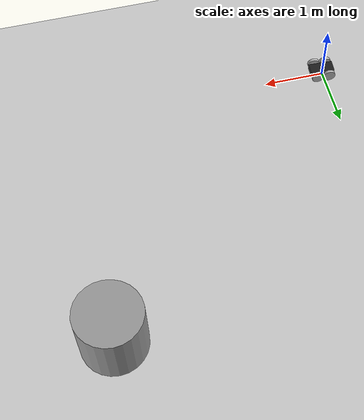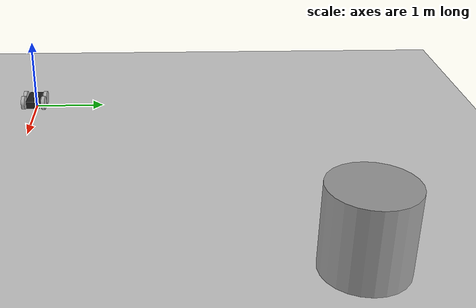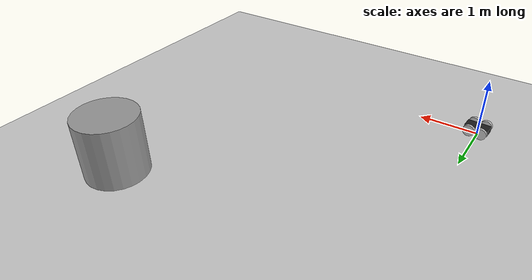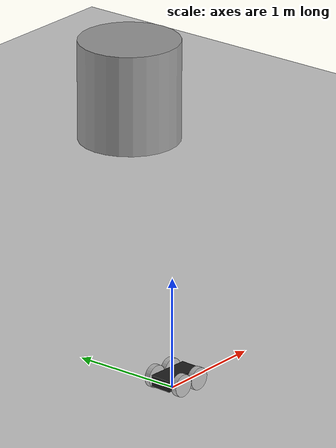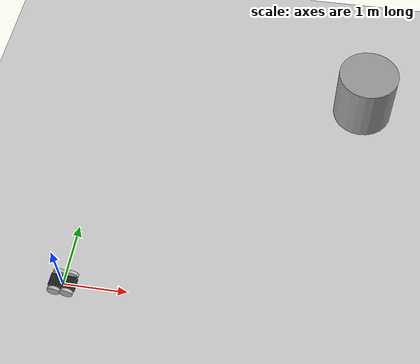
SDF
<sdf version="1.6">
 <world name="default">
  <model name="ground_plane">
   <static>1</static>
   <link name="link">
    <collision name="collision">
     <geometry><plane><normal>0 0 1</normal><size>100 100</size></plane></geometry>
     <surface>
      <contact><collide_bitmask>65535</collide_bitmask></contact>
      <friction><ode><mu>100</mu><mu2>50</mu2></ode></friction>
     </surface>
    </collision>
    <visual name="visual">
     <cast_shadows>0</cast_shadows>
     <geometry><plane><normal>0 0 1</normal><size>100 100</size></plane></geometry>
     <material>
      <script><uri>file://media/materials/scripts/gazebo.material</uri><name>Gazebo/Grey</name></script>
     </material>
    </visual>
   </link>
  </model>
  <light name="sun" type="directional">
   <pose>0 0 10 0 -0 0</pose>
   <diffuse>0.8 0.8 0.8 1</diffuse>
   <specular>0.2 0.2 0.2 1</specular>
   <attenuation>
    <range>1000</range>
    <constant>0.9</constant>
    <linear>0.01</linear>
    <quadratic>0.001</quadratic>
   </attenuation>
   <direction>-0.5 0.1 -0.9</direction>
  </light>
  <gravity>0 0 -9.8</gravity>
  <magnetic_field>6e-06 2.3e-05 -4.2e-05</magnetic_field>
  <atmosphere type="adiabatic"/>
  <physics name="default_physics" default="0" type="ode">
   <max_step_size>0.001</max_step_size>
   <real_time_factor>1</real_time_factor>
   <real_time_update_rate>1000</real_time_update_rate>
  </physics>
  <scene><ambient>0.4 0.4 0.4 1</ambient><background>0.7 0.7 0.7 1</background><shadows>1</shadows></scene>
  <audio><device>default</device></audio>
  <spherical_coordinates>
   <surface_model>EARTH_WGS84</surface_model>
   <latitude_deg>0</latitude_deg>
   <longitude_deg>0</longitude_deg>
   <elevation>0</elevation>
   <heading_deg>0</heading_deg>
  </spherical_coordinates>
  <model name="rrt_bot">
   <link name="chassis">
    <inertial>
     <pose>0 0 0.1 0 -0 0</pose>
     <mass>15</mass>
     <inertia><ixx>0.1</ixx><ixy>0</ixy><ixz>0</ixz><iyy>0.1</iyy><iyz>0</iyz><izz>0.1</izz></inertia>
    </inertial>
    <collision name="chassis_fixed_joint_lump__collision_collision">
     <geometry><box><size>0.4 0.2 0.1</size></box></geometry>
    </collision>
    <visual name="chassis_visual_visual">
     <geometry><box><size>0.4 0.2 0.1</size></box></geometry>
     <material>
      <script><name>Gazebo/Black</name><uri>file://media/materials/scripts/gazebo.material</uri></script>
     </material>
    </visual>
   </link>
   <link name="left_fwheel">
    <pose>-0.1 0.15 0 0 -0 0</pose>
    <inertial>
     <pose>0 0 0 -0 1.5707 1.5707</pose>
     <mass>5</mass>
     <inertia><ixx>0.013</ixx><ixy>0</ixy><ixz>0</ixz><iyy>0.013</iyy><iyz>0</iyz><izz>0.013</izz></inertia>
    </inertial>
    <collision name="left_fwheel_fixed_joint_lump__collision_collision">
     <pose>0 0 0 3.14159 1.57079 -1.57089</pose>
     <geometry><cylinder><length>0.05</length><radius>0.1</radius></cylinder></geometry>
    </collision>
    <visual name="left_fwheel_fixed_joint_lump__left_wheel_fvisual_visual">
     <pose>0 0 0 3.14159 1.57079 -1.57089</pose>
     <geometry><cylinder><length>0.05</length><radius>0.1</radius></cylinder></geometry>
    </visual>
   </link>
   <joint name="left_wheel_fhinge" type="revolute">
    <child>left_fwheel</child>
    <parent>chassis</parent>
    <axis>
     <xyz>0 1 0</xyz>
     <limit><lower>-1e+16</lower><upper>1e+16</upper></limit>
     <dynamics><spring_reference>0</spring_reference><spring_stiffness>0</spring_stiffness></dynamics>
     <use_parent_model_frame>1</use_parent_model_frame>
    </axis>
   </joint>
   <link name="left_wheel">
    <pose>0.1 0.15 0 0 -0 0</pose>
    <inertial>
     <pose>0 0 0 -0 1.5707 1.5707</pose>
     <mass>5</mass>
     <inertia><ixx>0.013</ixx><ixy>0</ixy><ixz>0</ixz><iyy>0.013</iyy><iyz>0</iyz><izz>0.013</izz></inertia>
    </inertial>
    <collision name="left_wheel_fixed_joint_lump__collision_collision">
     <pose>0 0 0 3.14159 1.57079 -1.57089</pose>
     <geometry><cylinder><length>0.05</length><radius>0.1</radius></cylinder></geometry>
    </collision>
    <visual name="left_wheel_visual_visual">
     <pose>0 0 0 3.14159 1.57079 -1.57089</pose>
     <geometry><cylinder><length>0.05</length><radius>0.1</radius></cylinder></geometry>
    </visual>
   </link>
   <joint name="left_wheel_hinge" type="revolute">
    <child>left_wheel</child>
    <parent>chassis</parent>
    <axis>
     <xyz>0 1 0</xyz>
     <limit><lower>-1e+16</lower><upper>1e+16</upper></limit>
     <dynamics><spring_reference>0</spring_reference><spring_stiffness>0</spring_stiffness></dynamics>
     <use_parent_model_frame>1</use_parent_model_frame>
    </axis>
   </joint>
   <link name="right_fwheel">
    <pose>-0.1 -0.15 0 0 -0 0</pose>
    <inertial>
     <pose>0 0 0 -0 1.5707 1.5707</pose>
     <mass>5</mass>
     <inertia><ixx>0.013</ixx><ixy>0</ixy><ixz>0</ixz><iyy>0.013</iyy><iyz>0</iyz><izz>0.013</izz></inertia>
    </inertial>
    <collision name="right_fwheel_fixed_joint_lump__collision_collision">
     <pose>0 0 0 3.14159 1.57079 -1.57089</pose>
     <geometry><cylinder><length>0.05</length><radius>0.1</radius></cylinder></geometry>
    </collision>
    <visual name="right_fwheel_fixed_joint_lump__right_wheel_fvisual_visual">
     <pose>0 0 0 3.14159 1.57079 -1.57089</pose>
     <geometry><cylinder><length>0.05</length><radius>0.1</radius></cylinder></geometry>
    </visual>
   </link>
   <joint name="right_wheel_fhinge" type="revolute">
    <child>right_fwheel</child>
    <parent>chassis</parent>
    <axis>
     <xyz>0 1 0</xyz>
     <limit><lower>-1e+16</lower><upper>1e+16</upper></limit>
     <dynamics><spring_reference>0</spring_reference><spring_stiffness>0</spring_stiffness></dynamics>
     <use_parent_model_frame>1</use_parent_model_frame>
    </axis>
   </joint>
   <link name="right_wheel">
    <pose>0.1 -0.15 0 0 -0 0</pose>
    <inertial>
     <pose>0 0 0 -0 1.5707 1.5707</pose>
     <mass>5</mass>
     <inertia><ixx>0.013</ixx><ixy>0</ixy><ixz>0</ixz><iyy>0.013</iyy><iyz>0</iyz><izz>0.013</izz></inertia>
    </inertial>
    <collision name="right_wheel_fixed_joint_lump__collision_collision">
     <pose>0 0 0 3.14159 1.57079 -1.57089</pose>
     <geometry><cylinder><length>0.05</length><radius>0.1</radius></cylinder></geometry>
    </collision>
    <visual name="right_wheel_visual_visual">
     <pose>0 0 0 3.14159 1.57079 -1.57089</pose>
     <geometry><cylinder><length>0.05</length><radius>0.1</radius></cylinder></geometry>
    </visual>
   </link>
   <joint name="right_wheel_hinge" type="revolute">
    <child>right_wheel</child>
    <parent>chassis</parent>
    <axis>
     <xyz>0 1 0</xyz>
     <limit><lower>-1e+16</lower><upper>1e+16</upper></limit>
     <dynamics><spring_reference>0</spring_reference><spring_stiffness>0</spring_stiffness></dynamics>
     <use_parent_model_frame>1</use_parent_model_frame>
    </axis>
   </joint>
   <plugin name="skid_steer_drive_controller" filename="libgazebo_ros_skid_steer_drive.so">
    <updateRate>100.0</updateRate>
    <robotNamespace>/</robotNamespace>
    <leftFrontJoint>left_wheel_fhinge</leftFrontJoint>
    <rightFrontJoint>right_wheel_fhinge</rightFrontJoint>
    <leftRearJoint>left_wheel_hinge</leftRearJoint>
    <rightRearJoint>right_wheel_hinge</rightRearJoint>
    <wheelSeparation>0.1</wheelSeparation>
    <wheelDiameter>0.2</wheelDiameter>
    <commandTopic>cmd_vel</commandTopic>
    <robotBaseFrame>chassis</robotBaseFrame>
    <torque>20</torque>
    <odometryTopic>odom</odometryTopic>
    <odometryFrame>odom</odometryFrame>
    <topicName>cmd_vel</topicName>
    <broadcastTF>0</broadcastTF>
    <covariance_x>0</covariance_x>
    <covariance_y>0</covariance_y>
    <covariance_yaw>0</covariance_yaw>
   </plugin>
   <plugin name="imu" filename="libhector_gazebo_ros_imu.so">
    <serviceName>/imu/calibrate</serviceName>
    <updateRate>200.0</updateRate>
    <bodyName>chassis</bodyName>
    <topicName>imu</topicName>
    <rpyOffset>0 0 0</rpyOffset>
    <xyzOffset>0 0 0</xyzOffset>
    <gaussianNoise>0.00000001</gaussianNoise>
    <accelDrift>0.00000001 0.00000001 0.00000001</accelDrift>
    <accelDriftFrequency>0.00000001 0.00000001 0.00000001</accelDriftFrequency>
    <accelGaussianNoise>0.00000001 0.00000001 0.00000001</accelGaussianNoise>
    <rateDrift>0.0 0.0 0.0</rateDrift>
    <rateDriftFrequency>0.0 0.0 0.0</rateDriftFrequency>
    <rateGaussianNoise>0.0 0.0 0.0</rateGaussianNoise>
    <headingDrift>0.0 0.0 0.0</headingDrift>
    <headingDriftFrequency>0.0 0.0 0.0</headingDriftFrequency>
    <headingGaussianNoise>0.0 0.0 0.0</headingGaussianNoise>
    <robotNamespace>/</robotNamespace>
   </plugin>
   <static>0</static>
   <plugin name="novatel_gps_sim" filename="libhector_gazebo_ros_gps.so">
    <alwaysOn>1</alwaysOn>
    <updateRate>10.0</updateRate>
    <bodyName>chassis</bodyName>
    <topicName>fix</topicName>
    <velocityTopicName>fix_velocity</velocityTopicName>
    <drift>5.0 5.0 5.0</drift>
    <gaussianNoise>0.000 0.000 0.000</gaussianNoise>
    <velocityDrift>0 0 0</velocityDrift>
    <velocityGaussianNoise>0.000 0.000 0.000</velocityGaussianNoise>
    <robotNamespace>/</robotNamespace>
   </plugin>
   <pose>0.01777 -0.023148 0.100001 0 -4e-06 -0.048161</pose>
  </model>
  <model name="unit_cylinder">
   <pose>4.33948 4.00058 0.499991 -0 -0 -0.034062</pose>
   <link name="link">
    <inertial>
     <mass>1</mass>
     <inertia><ixx>0.145833</ixx><ixy>0</ixy><ixz>0</ixz><iyy>0.145833</iyy><iyz>0</iyz><izz>0.125</izz></inertia>
    </inertial>
    <collision name="collision">
     <geometry><cylinder><radius>0.5</radius><length>1</length></cylinder></geometry>
    </collision>
    <visual name="visual">
     <geometry><cylinder><radius>0.5</radius><length>1</length></cylinder></geometry>
     <material>
      <script><name>Gazebo/Grey</name><uri>file://media/materials/scripts/gazebo.material</uri></script>
     </material>
    </visual>
   </link>
  </model>
 </world>
</sdf>
